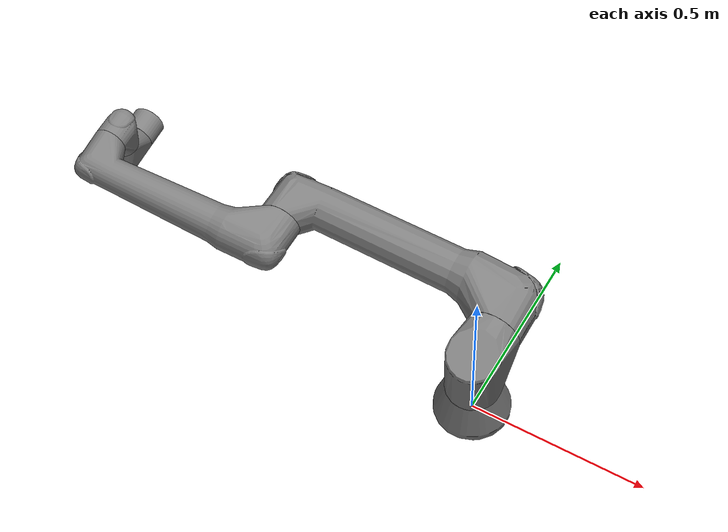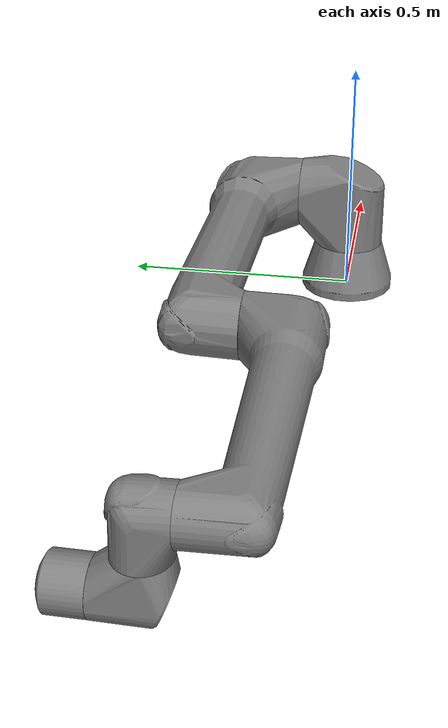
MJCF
<?xml version='1.0' encoding='utf-8'?>
<mujoco model="UR15-B">
  <compiler angle="radian" />

  <asset>
    <mesh name="base" content_type="model/stl" file="/home/rlrk/IsaacLab/eval_runs/troot_optE_dapg_wholeroute_scope_20260701/p4_ur15_sim_20260727/ur15_mirror_meshes/base.stl" />
    <mesh name="shoulder" content_type="model/stl" file="/home/rlrk/IsaacLab/eval_runs/troot_optE_dapg_wholeroute_scope_20260701/p4_ur15_sim_20260727/ur15_mirror_meshes/shoulder.stl" />
    <mesh name="upperarm" content_type="model/stl" file="/home/rlrk/IsaacLab/eval_runs/troot_optE_dapg_wholeroute_scope_20260701/p4_ur15_sim_20260727/ur15_mirror_meshes/upperarm.stl" />
    <mesh name="forearm" content_type="model/stl" file="/home/rlrk/IsaacLab/eval_runs/troot_optE_dapg_wholeroute_scope_20260701/p4_ur15_sim_20260727/ur15_mirror_meshes/forearm.stl" />
    <mesh name="wrist1" content_type="model/stl" file="/home/rlrk/IsaacLab/eval_runs/troot_optE_dapg_wholeroute_scope_20260701/p4_ur15_sim_20260727/ur15_mirror_meshes/wrist1.stl" />
    <mesh name="wrist2" content_type="model/stl" file="/home/rlrk/IsaacLab/eval_runs/troot_optE_dapg_wholeroute_scope_20260701/p4_ur15_sim_20260727/ur15_mirror_meshes/wrist2.stl" />
    <mesh name="wrist3" content_type="model/stl" file="/home/rlrk/IsaacLab/eval_runs/troot_optE_dapg_wholeroute_scope_20260701/p4_ur15_sim_20260727/ur15_mirror_meshes/wrist3.stl" />
  </asset>

  <worldbody>
    <geom pos="0 0 0" quat="1 0 0 0" type="mesh" mesh="base" />
    <body name="shoulder_link" pos="0 0 0.2186" quat="0 0 0 1">
      <inertial pos="-2.4e-05 -0.025304 -0.033309" quat="0.6956669601 0.1631169907 0.1588989909 -0.6813159609" mass="9.9883" diaginertia="0.0520589 0.0513337 0.0299064" />
      <joint name="shoulder_pan_joint" pos="0 0 0" axis="-0 -0 -1" range="-6.28319 6.28319" actuatorfrcrange="-433 433" />
      <geom quat="0 0 0 1" type="mesh" mesh="shoulder" />
      <body name="upper_arm_link" quat="0.7071067812 0.7071067812 0 0">
        <inertial pos="0.228491 -8.3e-05 0.192787" quat="0.5083109729 0.4917219738 -0.4940289737 -0.505731973" mass="14.9255" diaginertia="1.1885 1.18368 0.0472925" />
        <joint name="shoulder_lift_joint" pos="0 0 0" axis="-0 -0 -1" range="-6.28319 6.28319" actuatorfrcrange="-433 433" />
        <geom pos="0 0 0.1" quat="0.5 0.5 0.5 0.5" type="mesh" mesh="upperarm" />
        <body name="forearm_link" pos="0.6475 0 0">
          <inertial pos="0.210929 1.9e-05 0.070552" quat="0.4875599787 0.5121399776 -0.5119139776 -0.4877929787" mass="6.1015" diaginertia="0.303502 0.297506 0.017818" />
          <joint name="elbow_joint" pos="0 0 0" axis="-0 -0 -1" range="-3.14159 3.14159" actuatorfrcrange="-204 204" />
          <geom pos="0 0 0.125" quat="0.5 0.5 0.5 0.5" type="mesh" mesh="forearm" />
          <body name="wrist_1_link" pos="0.5164 0 0.1824">
            <inertial pos="-2.5e-05 -0.016413 -0.019695" quat="0.8333321656 0.5518001097 0.01454150289 -0.02937150584" mass="2.089" diaginertia="0.00433968 0.00421107 0.00224825" />
            <joint name="wrist_1_joint" pos="0 0 0" axis="-0 -0 -1" range="-6.28319 6.28319" actuatorfrcrange="-70 70" />
            <geom pos="0 0 -0.0502" quat="0.7071067812 0.7071067812 0 0" type="mesh" mesh="wrist1" />
            <body name="wrist_2_link" pos="0 -0.1361 -2.79146e-11" quat="0.7071067812 0.7071067812 0 0">
              <inertial pos="-2.5e-05 0.015886 -0.01996" quat="0.5485721165 0.8318211767 -0.07245321539 0.04350510924" mass="2.0869" diaginertia="0.00428972 0.00423268 0.0022586" />
              <joint name="wrist_2_joint" pos="0 0 0" axis="-0 -0 -1" range="-6.28319 6.28319" actuatorfrcrange="-70 70" />
              <geom pos="0 0 -0.064" quat="1 0 0 0" type="mesh" mesh="wrist2" />
              <body name="wrist_3_link" pos="0 0.1434 -2.94118e-11" quat="-0.7071067812 0.7071067812 0 0">
                <inertial pos="1.8e-05 -0.000112 -0.053397" quat="0.9339092928 -0.02334420732 0.02183710685 0.3560781116" mass="1.0666" diaginertia="0.00140944 0.00140222 0.00100034" />
                <joint name="wrist_3_joint" pos="0 0 0" axis="-0 -0 -1" range="-6.28319 6.28319" actuatorfrcrange="-70 70" />
                <geom pos="0 0 -0.0715" quat="0.7071067812 0.7071067812 0 0" type="mesh" mesh="wrist3" />
              </body>
            </body>
          </body>
        </body>
      </body>
    </body>
  </worldbody>
</mujoco>
